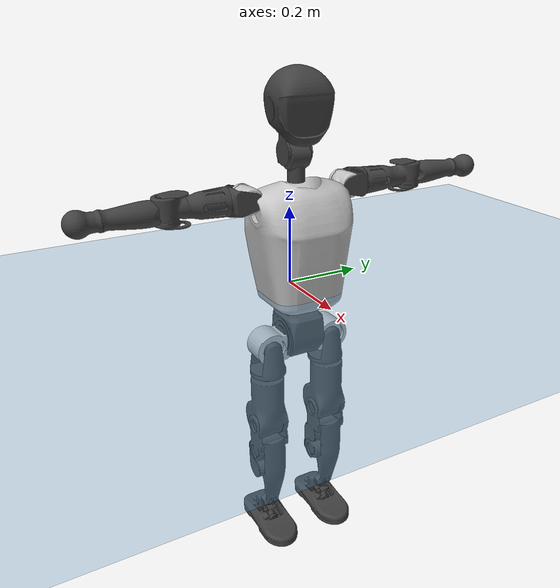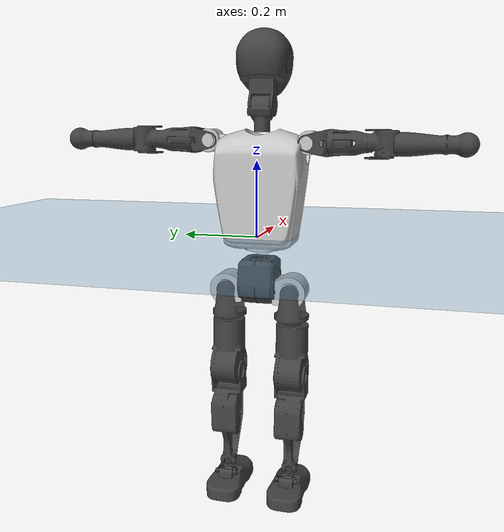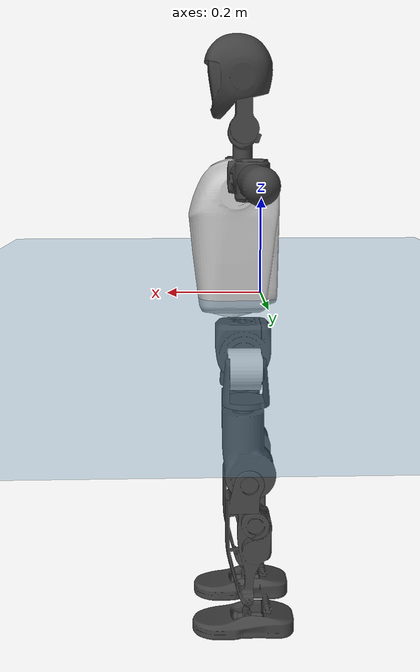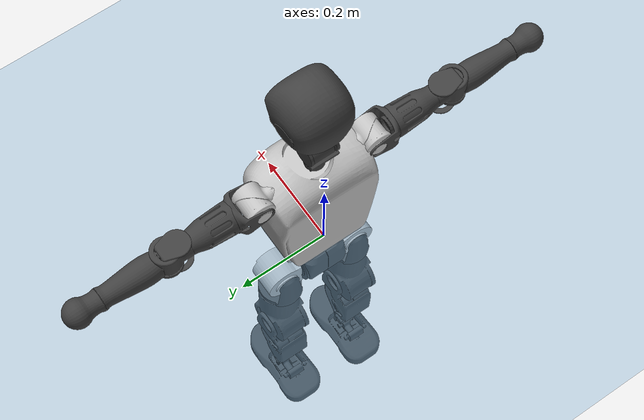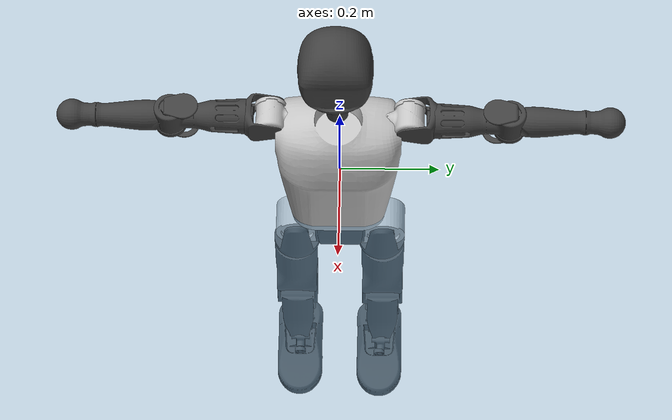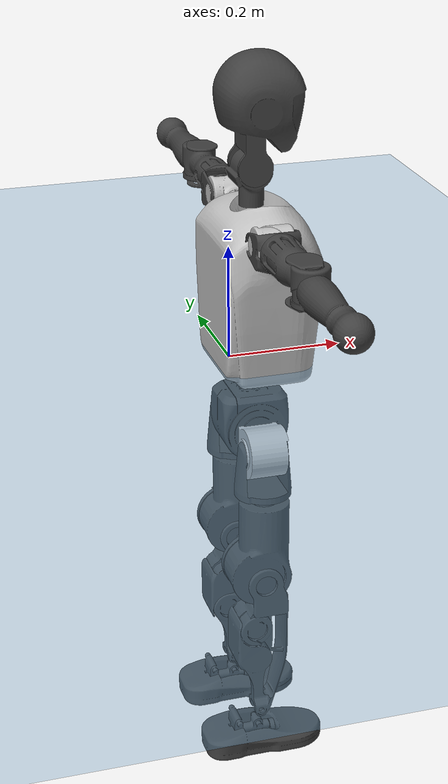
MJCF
<mujoco model="T1">
  <compiler angle="radian" assetdir="assets" balanceinertia="true" inertiafromgeom="false"/>

  <option timestep="0.005" density="1.2" viscosity="2e-05"/>

  <size nkey="1"/>

  <visual>
    <quality shadowsize="8192"/>
    <map shadowclip="0.5"/>
  </visual>

  <default>
    <default class="/">
      <joint armature="0.01" damping="0.01" frictionloss="0.1"/>
      <geom contype="0" conaffinity="0" group="1" solref="-1000 -80"/>
      <site size="0.01 0.005 0.005" group="5"/>
      <general forcelimited="true" biastype="affine" gainprm="25" biasprm="0 -25 -0.6"/>
      <default class="t1">
        <geom rgba="0.25 0.25 0.25 1"/>
        <default class="visual">
          <geom type="mesh" group="2"/>
        </default>
        <default class="collision">
          <geom group="3"/>
        </default>
        <default class="foot">
          <geom size="0.1115 0.05 0.015" type="box" condim="6" group="4" priority="1" solimp="0.015 1 0.015"/>
        </default>
        <default class="reward_collision_sphere">
          <geom group="5" rgba="1 0 0 1"/>
        </default>
      </default>
    </default>
  </default>

  <asset>
    <texture type="skybox" colorspace="auto" name="//unnamed_texture_0" builtin="gradient" rgb1="0.95 0.95 0.95" rgb2="0.95 0.95 0.95" width="100" height="600"/>
    <texture type="2d" colorspace="auto" name="texplane" builtin="checker" rgb1="0.345 0.575 0.748" rgb2="0.345 0.575 0.748" markrgb="1 1 1" width="512" height="512"/>
    <material name="MatPlane" class="/" texture="texplane" texuniform="true" texrepeat="2 2" specular="0.9"/>
    <mesh name="Trunk" class="/" file="Trunk.stl"/>
    <mesh name="H1" class="/" file="H1.stl"/>
    <mesh name="H2" class="/" file="H2.stl"/>
    <mesh name="AL1" class="/" file="AL1.stl"/>
    <mesh name="AL2" class="/" file="AL2.stl"/>
    <mesh name="AL3" class="/" file="AL3.stl"/>
    <mesh name="left_hand_link" class="/" file="left_hand_link.stl"/>
    <mesh name="AR1" class="/" file="AR1.stl"/>
    <mesh name="AR2" class="/" file="AR2.stl"/>
    <mesh name="AR3" class="/" file="AR3.stl"/>
    <mesh name="right_hand_link" class="/" file="right_hand_link.stl"/>
    <mesh name="Waist" class="/" file="Waist.stl"/>
    <mesh name="Hip_Pitch_Left" class="/" file="Hip_Pitch_Left.stl"/>
    <mesh name="Hip_Roll_Left" class="/" file="Hip_Roll_Left.stl"/>
    <mesh name="Hip_Yaw_Left" class="/" file="Hip_Yaw_Left.stl"/>
    <mesh name="Shank_Left" class="/" file="Shank_Left.stl"/>
    <mesh name="Ankle_Cross_Left" class="/" file="Ankle_Cross_Left.stl"/>
    <mesh name="left_foot_link" class="/" file="left_foot_link.stl"/>
    <mesh name="Hip_Pitch_Right" class="/" file="Hip_Pitch_Right.stl"/>
    <mesh name="Hip_Roll_Right" class="/" file="Hip_Roll_Right.stl"/>
    <mesh name="Hip_Yaw_Right" class="/" file="Hip_Yaw_Right.stl"/>
    <mesh name="Shank_Right" class="/" file="Shank_Right.stl"/>
    <mesh name="Ankle_Cross_Right" class="/" file="Ankle_Cross_Right.stl"/>
    <mesh name="right_foot_link" class="/" file="right_foot_link.stl"/>
  </asset>

  <worldbody>
    <geom name="floor" class="/" size="100 100 0.125" type="plane" group="0" material="MatPlane"/>
    <light name="toplight_shadow" class="/" pos="0 0 5" dir="0.0990148 0.0990148 -0.990148" type="directional" ambient="0.04 0.04 0.04" diffuse="0.55 0.55 0.55" specular="0.12 0.12 0.12"/>
    <light name="toplight_fill" class="/" pos="0 0 5" dir="0.0990148 0.0990148 -0.990148" type="directional" castshadow="false" ambient="0.04 0.04 0.04" diffuse="0.3 0.3 0.3" specular="0.08 0.08 0.08"/>
    <body name="trunk" childclass="t1" pos="-0.000490509 -0.00102246 0.00176755" quat="0.999999 0.00122425 0.000177202 0.000569846">
      <inertial pos="0.0331149 -0.00162715 0.120648" quat="0.999959 0.000483135 -0.00899213 -0.000577067" mass="7.45263" diaginertia="0.0107204 0.029655 0.103558"/>
      <joint name="//unnamed_joint_0" type="free" armature="0" damping="0" frictionloss="0"/>
      <geom name="//unnamed_geom_1" class="visual" rgba="0.76 0.76 0.76 1" mesh="Trunk"/>
      <geom name="//unnamed_geom_2" class="collision" size="0.0649768 0.0866357 0.129954" pos="0.0388281 0 0.134752" type="box"/>
      <geom name="//unnamed_geom_3" class="reward_collision_sphere" size="0.0996311" pos="0.0388281 0 0.112293"/>
      <geom name="//unnamed_geom_4" class="reward_collision_sphere" size="0.0129954" pos="0.0388281 0.0704651 0"/>
      <geom name="//unnamed_geom_5" class="reward_collision_sphere" size="0.0129954" pos="0.0388281 -0.0704651 0"/>
      <geom name="//unnamed_geom_6" class="reward_collision_sphere" size="0.0129954" pos="0.0388281 0.0887031 0.202128"/>
      <geom name="//unnamed_geom_7" class="reward_collision_sphere" size="0.0129954" pos="0.0388281 -0.0887031 0.202128"/>
      <site name="imu" pos="0.00530894 -0.00690416 0.00439551" size="0.00866357"/>
      <camera name="track" pos="0 -1.658 0" quat="0.707107 0.707107 0 0" mode="trackcom"/>
      <camera name="ego_camera" pos="0.0789505 0 0.471633" quat="-0.5 -0.5 0.5 0.5"/>
      <body name="H1" pos="0.0397336 -0.00218834 0.270115" quat="1 -0.000128093 0.000265291 0.000201627">
        <inertial pos="-0.00102526 -0.00127137 0.067112" quat="0.766708 -0.00960113 0.00448369 0.641908" mass="0.282186" diaginertia="2.7094e-05 9.04244e-05 0.00026837"/>
        <joint name="AAHead_yaw" pos="0 0 0" axis="-0.0107418 -0.00121102 0.999942" range="-1.54318 1.59134" armature="0.00816273" damping="0.00829303" frictionloss="0.0831035"/>
        <geom name="//unnamed_geom_8" class="visual" mesh="H1"/>
        <body name="H2" pos="-0.00255146 -0.00225974 0.0700585" quat="0.999999 -0.000357581 -6.78722e-05 0.00120926">
          <inertial pos="0.0057576 0.00126755 0.111132" quat="0.988029 0.112411 -0.0699393 -0.079188" mass="0.396661" diaginertia="0.0002274 0.000756118 0.00315505"/>
          <joint name="Head_pitch" pos="0 0 0" axis="0.00773304 -0.99997 0.000716572" stiffness="0.00392483" range="-1.25502 0.306504" armature="0.00998264" damping="0" frictionloss="0.0830806"/>
          <geom name="//unnamed_geom_9" class="visual" mesh="H2"/>
          <geom name="//unnamed_geom_10" class="collision" size="0.0693086" pos="0.00647135 0 0.123523"/>
          <geom name="//unnamed_geom_11" class="reward_collision_sphere" size="0.0779721" pos="0.0129427 0 0.112293"/>
        </body>
      </body>
      <body name="AL1" pos="0.0409458 0.0903921 0.248854" quat="1 -6.19316e-06 0.00089884 -0.000397516">
        <inertial pos="-0.00049687 0.0377572 0.000138902" quat="0.509877 0.49428 -0.500858 0.494827" mass="0.342873" diaginertia="0.00015888 0.000487948 0.000503573"/>
        <joint name="Left_Shoulder_Pitch" pos="0 0 0" axis="-0.00191425 0.999998 -0.00115255" range="-3.25104 1.21395" armature="0.00762226" damping="0.00441549" frictionloss="0.0778717"/>
        <geom name="//unnamed_geom_12" class="visual" rgba="0.76 0.76 0.76 1" mesh="AL1"/>
        <body name="AL2" pos="-0.00104386 0.0425843 0.000386376" quat="1 1.19624e-05 -1.78721e-05 1.60195e-05">
          <inertial pos="0.00306604 0.0291834 -0.000167069" quat="0.487045 0.50988 -0.489375 0.513149" mass="0.106283" diaginertia="4.67006e-05 0.000138776 0.00033223"/>
          <joint name="Left_Shoulder_Roll" pos="0 0 0" axis="-0.999964 -0.000385919 -0.00849656" stiffness="0.00680618" range="-1.58915 1.7234" armature="0.00908131" damping="0" frictionloss="0.0881689"/>
          <geom name="//unnamed_geom_13" class="visual" mesh="AL2"/>
          <body name="AL3" pos="0.00201955 0.0500436 0.000584692" quat="1 8.37988e-05 -0.000341972 -0.000143615">
            <inertial pos="0.00159789 0.0705485 -0.000447633" quat="0.704107 0.709984 -0.00661841 -0.0106091" mass="0.632769" diaginertia="0.00138548 0.00496027 0.0010947"/>
            <joint name="Left_Elbow_Pitch" pos="0 0 0" axis="-0.00928497 -0.999954 -0.0025964" stiffness="0.0126487" range="-2.2935 2.28516" armature="0.00962551" damping="0.0280659" frictionloss="0.0802329"/>
            <geom name="//unnamed_geom_14" class="visual" mesh="AL3"/>
            <geom name="//unnamed_geom_15" class="collision" size="0.0259907 0.0649768" pos="0 0.04145 0" quat="0.707105 0.707108 0 0" type="cylinder"/>
            <geom name="//unnamed_geom_16" class="reward_collision_sphere" size="0.0311889"/>
            <body name="left_hand_link" pos="-0.000891947 0.123283 -0.000764996" quat="0.999999 0.00121036 -0.000534482 4.32703e-05">
              <inertial pos="0.000124243 0.0923411 0.00297813" quat="0.707585 0.706628 6.97888e-05 0.000235106" mass="0.216242" diaginertia="0.000936708 0.00323991 0.000396051"/>
              <joint name="Left_Elbow_Yaw" pos="0 0 0" axis="-0.00047103 0.00769544 0.99997" range="-2.49532 -0.00365784" armature="0.00823129" damping="0.0102904" frictionloss="0.0768177"/>
              <geom name="//unnamed_geom_17" class="visual" mesh="left_hand_link"/>
              <geom name="//unnamed_geom_18" class="collision" size="0.0259907 0.0758062" pos="0 0.10777 0" quat="0.707105 0.707108 0 0" type="cylinder"/>
              <geom name="//unnamed_geom_19" class="reward_collision_sphere" size="0.0433178"/>
              <geom name="//unnamed_geom_20" class="reward_collision_sphere" size="0.0303225" pos="0 0.0911901 0"/>
              <geom name="//unnamed_geom_21" class="reward_collision_sphere" size="0.0303225" pos="0 0.178235 0"/>
            </body>
          </body>
        </body>
      </body>
      <body name="AR1" pos="0.0365865 -0.084944 0.244424" quat="1 0.000158617 0.000446133 0.000238306">
        <inertial pos="0.000154352 -0.0347773 0.00139089" quat="0.497377 0.50228 -0.506469 0.493782" mass="0.352154" diaginertia="0.000148774 0.000485757 0.00051058"/>
        <joint name="Right_Shoulder_Pitch" pos="0 0 0" axis="0.00115209 -0.999999 0.000168001" range="-1.22933 3.31682" armature="0.00813105" damping="0.00873598" frictionloss="0.0799914"/>
        <geom name="//unnamed_geom_22" class="visual" rgba="0.76 0.76 0.76 1" mesh="AR1"/>
        <body name="AR2" pos="-0.0026807 -0.0408003 -0.00104094" quat="0.999999 0.000499964 -0.000459126 0.000986577">
          <inertial pos="0.00518054 -0.0304873 0.00281622" quat="0.512146 0.486948 -0.512625 0.487652" mass="0.104002" diaginertia="4.54268e-05 0.000134748 0.000324145"/>
          <joint name="Right_Shoulder_Roll" pos="0 0 0" axis="-0.999842 0.0160602 -0.00758522" range="-1.68964 1.54263" armature="0.00821102" damping="0.0155871" frictionloss="0.092373"/>
          <geom name="//unnamed_geom_23" class="visual" mesh="AR2"/>
          <body name="AR3" pos="-0.00086501 -0.0522745 0.00134114" quat="1 -0.000102019 2.71686e-05 -2.39214e-05">
            <inertial pos="-0.000272632 -0.0699411 0.000709753" quat="0.710667 0.703508 0.00102464 -0.00525199" mass="0.677767" diaginertia="0.00149901 0.00489987 0.00111572"/>
            <joint name="Right_Elbow_Pitch" pos="0 0 0" axis="-0.00593077 0.999903 -0.0126069" stiffness="0.00971907" range="-2.22812 2.24335" armature="0.00849538" damping="0.0113976" frictionloss="0.0868459"/>
            <geom name="//unnamed_geom_24" class="visual" mesh="AR3"/>
            <geom name="//unnamed_geom_25" class="collision" size="0.0259907 0.0649768" pos="0 -0.04145 0" quat="0.707105 0.707108 0 0" type="cylinder"/>
            <geom name="//unnamed_geom_26" class="reward_collision_sphere" size="0.0311889"/>
            <body name="right_hand_link" pos="-0.00179714 -0.120998 -0.00237539" quat="0.999999 -0.000972462 1.62196e-05 -0.000929191">
              <inertial pos="-0.00116847 -0.0924843 -0.000244447" quat="0.705505 0.708704 -0.00028566 0.000848089" mass="0.207954" diaginertia="0.000962988 0.00322815 0.000380812"/>
              <joint name="Right_Elbow_Yaw" pos="0 0 0" axis="-0.00518703 -0.00612612 0.999968" range="0.0224757 2.41907" armature="0.00905231" damping="0" frictionloss="0.0941673"/>
              <geom name="//unnamed_geom_27" class="visual" mesh="right_hand_link"/>
              <geom name="//unnamed_geom_28" class="collision" size="0.0259907 0.0758062" pos="0 -0.10777 0" quat="0.707105 0.707108 0 0" type="cylinder"/>
              <geom name="//unnamed_geom_29" class="reward_collision_sphere" size="0.0433178"/>
              <geom name="//unnamed_geom_30" class="reward_collision_sphere" size="0.0303225" pos="0 -0.0911901 0"/>
              <geom name="//unnamed_geom_31" class="reward_collision_sphere" size="0.0303225" pos="0 -0.178235 0"/>
            </body>
          </body>
        </body>
      </body>
      <body name="Waist" pos="0.0383042 0.00253784 -0.130535" quat="0.999999 -0.000486764 0.00150672 -0.000262691">
        <inertial pos="0.00389934 0.0010291 0.00834256" quat="0.983703 -0.00017837 -0.1798 0.000650973" mass="1.57079" diaginertia="0.000601562 0.00194677 0.00844863"/>
        <joint name="Waist" pos="0 0 0" axis="-0.00765711 0.00201215 0.999969" range="-1.51666 1.51825" armature="0.0075243" damping="0.00282244" frictionloss="0.0905709"/>
        <geom name="//unnamed_geom_32" class="visual" mesh="Waist"/>
        <body name="Hip_Pitch_Left" pos="0.00156106 0.0890372 0.00149486" quat="0.999999 0.000392342 -0.000656954 -0.000955312">
          <inertial pos="-0.000688528 -0.00728557 -0.0196429" quat="0.975816 0.218052 0.0149378 0.00363236" mass="0.698057" diaginertia="0.000207381 0.000564962 0.00224438"/>
          <joint name="Left_Hip_Pitch" pos="0 0 0" axis="-0.0105326 0.999939 -0.00325603" stiffness="0.00677478" range="-1.85197 1.5584" armature="0.00818336" damping="0.0104144" frictionloss="0.0801851"/>
          <geom name="//unnamed_geom_33" class="visual" rgba="0.76 0.76 0.76 1" mesh="Hip_Pitch_Left"/>
          <body name="Hip_Roll_Left" pos="-0.00130364 -0.00290723 -0.0202615" quat="0.999999 0.000434853 -0.000502752 0.00137909">
            <inertial pos="0.0025411 -0.00282745 -0.0594012" quat="0.706494 -0.00535282 -0.00411794 0.707686" mass="0.251803" diaginertia="0.000199627 0.000612289 0.00095852"/>
            <joint name="Left_Hip_Roll" pos="0 0 0" axis="-0.999907 -0.00499531 -0.012698" stiffness="0.00171103" range="-1.57231 0.185608" armature="0.00927041" damping="0.0121036" frictionloss="0.0864042"/>
            <geom name="//unnamed_geom_34" class="visual" mesh="Hip_Roll_Left"/>
            <geom name="//unnamed_geom_35" class="reward_collision_sphere" size="0.0476496"/>
            <body name="Hip_Yaw_Left" pos="0.00282544 0.00285573 -0.0901261" quat="1 9.48838e-05 -0.000141679 -0.000128099">
              <inertial pos="-0.00402964 -0.00267898 -0.101003" quat="0.691917 -0.0247387 -0.0270882 0.721045" mass="1.38096" diaginertia="0.0028487 0.00966441 0.00460814"/>
              <joint name="Left_Hip_Yaw" pos="0 0 0" axis="0.00469375 0.0103682 -0.999935" stiffness="0.00793383" range="-0.992475 1.02332" armature="0.00854264" damping="0" frictionloss="0.0944891"/>
              <geom name="//unnamed_geom_36" class="visual" mesh="Hip_Yaw_Left"/>
              <geom name="//unnamed_geom_37" class="collision" size="0.0433178 0.0693086" type="cylinder"/>
              <body name="Shank_Left" pos="-0.0113288 0.000692208 -0.153111" quat="1 0.000298585 -0.000128205 0.000380169">
                <inertial pos="-0.00460627 -0.00166617 -0.136913" quat="0.997594 2.67766e-05 -0.022596 0.0655431" mass="1.07107" diaginertia="0.00382335 0.0135611 0.00324095"/>
                <joint name="Left_Knee_Pitch" pos="0 0 0" axis="-0.0138999 0.999844 -0.0108653" range="0.0211364 2.33635" armature="0.00920342" damping="0" frictionloss="0.0855739"/>
                <geom name="//unnamed_geom_38" class="visual" mesh="Shank_Left"/>
                <geom name="//unnamed_geom_39" class="collision" size="0.0433178 0.0649768" pos="0 0 -0.134752" type="cylinder"/>
                <geom name="//unnamed_geom_40" class="reward_collision_sphere" size="0.0563132"/>
                <body name="Ankle_Cross_Left" pos="0.00203739 -0.00144897 -0.314954" quat="0.999999 0.000866856 -0.000398114 -0.00104205">
                  <inertial pos="-0.00301228 -0.00057248 -0.00635397" quat="0.446973 0.552684 0.547515 0.44157" mass="0.0475553" diaginertia="3.42638e-06 1.03271e-05 2.07696e-05"/>
                  <joint name="Left_Ankle_Pitch" pos="0 0 0" axis="0.00595928 0.999982 0.000527772" range="-0.842085 0.326161" armature="0.00956538" damping="0.0207263" frictionloss="0.0959019"/>
                  <geom name="//unnamed_geom_41" class="visual" mesh="Ankle_Cross_Left"/>
                  <body name="left_foot_link" pos="-0.00248809 -0.00283962 -0.0132452" quat="1 0.000502739 -0.00023655 0.000377798">
                    <inertial pos="-0.00267749 0.00261101 -0.0100955" quat="0.00418381 0.620623 -0.00148628 0.784096" mass="0.42673" diaginertia="0.000285471 0.000891776 0.00366179"/>
                    <joint name="Left_Ankle_Roll" pos="0 0 0" axis="-0.999999 -0.00116727 0.000145285" range="-0.45527 0.408388" armature="0.00868732" damping="0.00873438" frictionloss="0.0743667"/>
                    <geom name="//unnamed_geom_42" class="visual" mesh="left_foot_link"/>
                    <geom name="left_foot" class="foot" size="0.103914 0.0466453 0.0115559" pos="0.00647135 0 -0.016844"/>
                    <geom name="//unnamed_geom_44" class="reward_collision_sphere" size="0.0450506" pos="0.00647135 0 -0.016844"/>
                    <geom name="//unnamed_geom_45" class="reward_collision_sphere" size="0.0259907" pos="0.0614779 -0.019067 -0.016844"/>
                    <geom name="//unnamed_geom_46" class="reward_collision_sphere" size="0.0259907" pos="-0.0452995 -0.019067 -0.016844"/>
                    <site name="left_foot" class="foot" pos="0.00647135 0 -0.016844" size="0.00866357"/>
                  </body>
                </body>
              </body>
            </body>
          </body>
        </body>
        <body name="Hip_Pitch_Right" pos="-0.00153247 -0.0887164 0.000391923" quat="1 -0.000195371 2.99777e-05 -3.14516e-05">
          <inertial pos="-0.00256213 0.00657387 -0.0226494" quat="0.973534 -0.228429 0.00708122 -0.00115338" mass="0.657283" diaginertia="0.000210582 0.000605479 0.00220917"/>
          <joint name="Right_Hip_Pitch" pos="0 0 0" axis="0.000844917 -0.999997 -0.00213374" range="-1.57812 1.75199" armature="0.00972021" damping="0.00746161" frictionloss="0.0832759"/>
          <geom name="//unnamed_geom_47" class="visual" rgba="0.76 0.76 0.76 1" mesh="Hip_Pitch_Right"/>
          <body name="Hip_Roll_Right" pos="0.000727794 -0.00192116 -0.0213917" quat="0.999999 0.000951075 0.000280386 0.000385106">
            <inertial pos="-0.000113881 0.0019532 -0.0602003" quat="0.70771 -0.000458806 -0.00794654 0.706459" mass="0.254603" diaginertia="0.000201575 0.000607195 0.000944689"/>
            <joint name="Right_Hip_Roll" pos="0 0 0" axis="-0.999838 0.0180119 0.000202763" stiffness="0.025131" range="-0.234928 1.57657" armature="0.00756416" damping="0.00743551" frictionloss="0.0840069"/>
            <geom name="//unnamed_geom_48" class="visual" mesh="Hip_Roll_Right"/>
            <geom name="//unnamed_geom_49" class="reward_collision_sphere" size="0.0476496"/>
            <body name="Hip_Yaw_Right" pos="-0.0003518 -0.00261811 -0.0926143" quat="1 -1.48725e-05 -0.00023277 -5.74421e-05">
              <inertial pos="-0.00574298 -0.000833251 -0.0984131" quat="0.713498 -0.0292034 -0.0318115 0.699325" mass="1.4495" diaginertia="0.00296251 0.0102387 0.00478344"/>
              <joint name="Right_Hip_Yaw" pos="0 0 0" axis="-0.00361019 -0.0129569 -0.99991" range="-1.00408 0.958378" armature="0.00880405" damping="0" frictionloss="0.0846892"/>
              <geom name="//unnamed_geom_50" class="visual" mesh="Hip_Yaw_Right"/>
              <geom name="//unnamed_geom_51" class="collision" size="0.0433178 0.0693086" type="cylinder"/>
              <body name="Shank_Right" pos="-0.00733045 0.000549981 -0.148776" quat="1 -0.00040832 0.000613653 0.000110358">
                <inertial pos="-0.00638693 0.00224088 -0.140447" quat="0.99925 0.000641293 -0.0249156 -0.0296209" mass="1.13491" diaginertia="0.00396366 0.0136154 0.00346915"/>
                <joint name="Right_Knee_Pitch" pos="0 0 0" axis="0.0010888 -0.999997 -0.00208951" range="-2.32397 0.0290891" armature="0.00945823" damping="0" frictionloss="0.0906092"/>
                <geom name="//unnamed_geom_52" class="visual" mesh="Shank_Right"/>
                <geom name="//unnamed_geom_53" class="collision" size="0.0433178 0.0649768" pos="0 0 -0.134752" type="cylinder"/>
                <geom name="//unnamed_geom_54" class="reward_collision_sphere" size="0.0563132"/>
                <body name="Ankle_Cross_Right" pos="-0.00298721 0.00131128 -0.315388" quat="1 0.000255243 0.000315025 0.000322704">
                  <inertial pos="-0.00445648 0.000299787 -0.0101393" quat="0.446567 0.549284 0.551858 0.440814" mass="0.0475269" diaginertia="3.34394e-06 1.01806e-05 1.97843e-05"/>
                  <joint name="Right_Ankle_Pitch" pos="0 0 0" axis="-0.010722 -0.999916 0.00734425" stiffness="0.00840724" range="-0.402001 0.837941" armature="0.00872314" damping="0.0129882" frictionloss="0.0871667"/>
                  <geom name="//unnamed_geom_55" class="visual" mesh="Ankle_Cross_Right"/>
                  <body name="right_foot_link" pos="0.000846576 -0.000873329 -0.0151389" quat="1 0.000336898 -0.00017049 -0.000139253">
                    <inertial pos="-0.00106954 -0.00144588 -0.0106842" quat="-0.00204047 0.622402 -0.0127763 0.78259" mass="0.443676" diaginertia="0.000310032 0.000912338 0.0037656"/>
                    <joint name="Right_Ankle_Roll" pos="0 0 0" axis="-1 -4.56313e-05 -2.87926e-05" stiffness="0.00394352" range="-0.394458 0.388363" armature="0.00970519" damping="0.0125437" frictionloss="0.0960557"/>
                    <geom name="//unnamed_geom_56" class="visual" mesh="right_foot_link"/>
                    <geom name="right_foot" class="foot" size="0.0871511 0.0446913 0.012675" pos="0.00647135 0 -0.016844"/>
                    <geom name="//unnamed_geom_58" class="reward_collision_sphere" size="0.0346543"/>
                    <geom name="//unnamed_geom_59" class="reward_collision_sphere" size="0.0259907" pos="0.00647135 0 -0.016844"/>
                    <geom name="//unnamed_geom_60" class="reward_collision_sphere" size="0.0259907" pos="0.0614779 0.019067 -0.016844"/>
                    <geom name="//unnamed_geom_61" class="reward_collision_sphere" size="0.0259907" pos="-0.0452995 0.019067 -0.016844"/>
                    <site name="right_foot" class="foot" pos="0.00647135 0 -0.016844" size="0.00866357"/>
                  </body>
                </body>
              </body>
            </body>
          </body>
        </body>
      </body>
    </body>
  </worldbody>

  <contact>
    <pair class="/" geom1="floor" geom2="left_foot" name="//unnamed_contact_0"/>
    <pair class="/" geom1="floor" geom2="right_foot" name="//unnamed_contact_1"/>
  </contact>

  <actuator>
    <general name="AAHead_yaw" class="/" joint="AAHead_yaw" forcerange="-5.47613 5.47613" gainprm="22.306" biasprm="0 -22.306 -0.496737"/>
    <general name="Head_pitch" class="/" joint="Head_pitch" forcerange="-6.58796 6.58796" gainprm="22.306" biasprm="0 -22.306 -0.496737"/>
    <general name="Left_Shoulder_Pitch" class="/" joint="Left_Shoulder_Pitch" forcerange="-15.9685 15.9685" gainprm="22.306" biasprm="0 -22.306 -0.496737"/>
    <general name="Left_Shoulder_Roll" class="/" joint="Left_Shoulder_Roll" forcerange="-14.152 14.152" gainprm="22.306" biasprm="0 -22.306 -0.496737"/>
    <general name="Left_Elbow_Pitch" class="/" joint="Left_Elbow_Pitch" forcerange="-16.501 16.501" gainprm="22.306" biasprm="0 -22.306 -0.496737"/>
    <general name="Left_Elbow_Yaw" class="/" joint="Left_Elbow_Yaw" forcerange="-15.47 15.47" gainprm="22.306" biasprm="0 -22.306 -0.496737"/>
    <general name="Right_Shoulder_Pitch" class="/" joint="Right_Shoulder_Pitch" forcerange="-15.2435 15.2435" gainprm="22.306" biasprm="0 -22.306 -0.496737"/>
    <general name="Right_Shoulder_Roll" class="/" joint="Right_Shoulder_Roll" forcerange="-13.9954 13.9954" gainprm="22.306" biasprm="0 -22.306 -0.496737"/>
    <general name="Right_Elbow_Pitch" class="/" joint="Right_Elbow_Pitch" forcerange="-15.5619 15.5619" gainprm="22.306" biasprm="0 -22.306 -0.496737"/>
    <general name="Right_Elbow_Yaw" class="/" joint="Right_Elbow_Yaw" forcerange="-15.4088 15.4088" gainprm="22.306" biasprm="0 -22.306 -0.496737"/>
    <general name="Waist" class="/" joint="Waist" forcerange="-26.5142 26.5142" gainprm="22.306" biasprm="0 -22.306 -0.496737"/>
    <general name="Left_Hip_Pitch" class="/" joint="Left_Hip_Pitch" forcerange="-34.9358 34.9358" gainprm="22.306" biasprm="0 -22.306 -0.496737"/>
    <general name="Left_Hip_Roll" class="/" joint="Left_Hip_Roll" forcerange="-25.3607 25.3607" gainprm="22.306" biasprm="0 -22.306 -0.496737"/>
    <general name="Left_Hip_Yaw" class="/" joint="Left_Hip_Yaw" forcerange="-27.5588 27.5588" gainprm="22.306" biasprm="0 -22.306 -0.496737"/>
    <general name="Left_Knee_Pitch" class="/" joint="Left_Knee_Pitch" forcerange="-54.9013 54.9013" gainprm="22.306" biasprm="0 -22.306 -0.496737"/>
    <general name="Left_Ankle_Pitch" class="/" joint="Left_Ankle_Pitch" forcerange="-16.7649 16.7649" gainprm="22.306" biasprm="0 -22.306 -0.496737"/>
    <general name="Left_Ankle_Roll" class="/" joint="Left_Ankle_Roll" forcerange="-12.9178 12.9178" gainprm="22.306" biasprm="0 -22.306 -0.496737"/>
    <general name="Right_Hip_Pitch" class="/" joint="Right_Hip_Pitch" forcerange="-42.8162 42.8162" gainprm="22.306" biasprm="0 -22.306 -0.496737"/>
    <general name="Right_Hip_Roll" class="/" joint="Right_Hip_Roll" forcerange="-26.646 26.646" gainprm="22.306" biasprm="0 -22.306 -0.496737"/>
    <general name="Right_Hip_Yaw" class="/" joint="Right_Hip_Yaw" forcerange="-28.4216 28.4216" gainprm="22.306" biasprm="0 -22.306 -0.496737"/>
    <general name="Right_Knee_Pitch" class="/" joint="Right_Knee_Pitch" forcerange="-50.934 50.934" gainprm="22.306" biasprm="0 -22.306 -0.496737"/>
    <general name="Right_Ankle_Pitch" class="/" joint="Right_Ankle_Pitch" forcerange="-17.2456 17.2456" gainprm="22.306" biasprm="0 -22.306 -0.496737"/>
    <general name="Right_Ankle_Roll" class="/" joint="Right_Ankle_Roll" forcerange="-12.9029 12.9029" gainprm="22.306" biasprm="0 -22.306 -0.496737"/>
  </actuator>

  <sensor>
    <gyro site="imu" name="imu_angular_velocity"/>
    <velocimeter site="imu" name="imu_linear_velocity"/>
    <framelinvel objtype="site" objname="left_foot" name="left_foot_global_linear_velocity"/>
    <framelinvel objtype="site" objname="right_foot" name="right_foot_global_linear_velocity"/>
  </sensor>

  <keyframe>
    <key name="home" qpos="0 0 0.6385 1 0 0 0 0 0 0 1.4 0 -0.4 0 -1.4 0 0.4 0 -0.4 0 0 0.8 -0.4 0 0.4 0 0 -0.8 0.4 0"/>
  </keyframe>
</mujoco>
